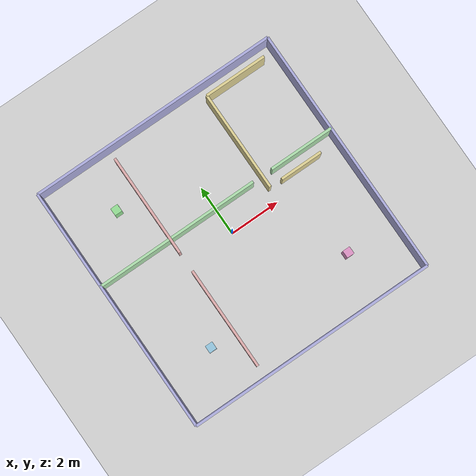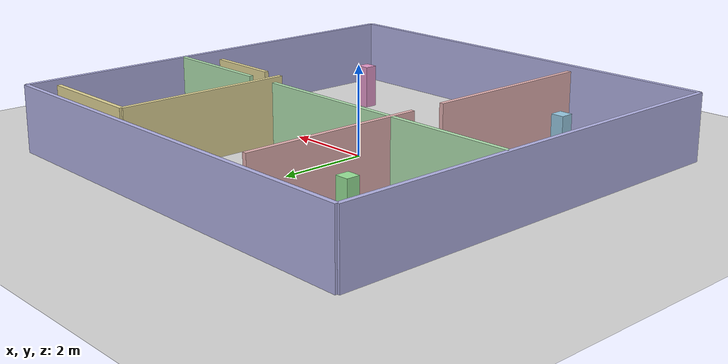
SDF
<?xml version="1.0" ?>
<sdf version="1.8">
  <world name="slamworld_v2">
    <physics name="default_physics" type="tpe">
      <max_step_size>0.001</max_step_size>
      <real_time_update_rate>1000</real_time_update_rate>
      <real_time_factor>1.0</real_time_factor>
    </physics>

    <light name="sun_main" type="directional">
      <cast_shadows>false</cast_shadows>
      <pose>0 0 10 0 0 0</pose>
      <diffuse>1 1 1 1</diffuse>
      <specular>0.2 0.2 0.2 1</specular>
      <direction>-0.5 0.1 -1</direction>
      <attenuation>
        <range>100</range>
        <constant>0.9</constant>
        <linear>0.01</linear>
        <quadratic>0.001</quadratic>
      </attenuation>
    </light>

    <model name="ground_plane_world">
      <static>true</static>
      <pose>0 0 0 0 0 0</pose>
      <link name="ground_plane_link">
        <collision name="ground_plane_col">
          <geometry>
            <plane>
              <normal>0 0 1</normal>
              <size>50 50</size>
            </plane>
          </geometry>
          <surface>
            <friction>
              <ode>
                <mu>1.0</mu>
                <mu2>0.8</mu2>
              </ode>
            </friction>
          </surface>
        </collision>
        <visual name="ground_plane_vis">
          <geometry>
            <plane>
              <normal>0 0 1</normal>
              <size>50 50</size>
            </plane>
          </geometry>
          <material>
            <ambient>0.8 0.8 0.8 1</ambient>
            <diffuse>0.85 0.85 0.85 1</diffuse>
          </material>
        </visual>
      </link>
    </model>

    <model name="lab_env_01">
      <static>true</static>

      <!-- 외곽 경계 -->
      <link name="wall_n">
        <pose>0 5 0.75 0 0 0</pose>
        <collision name="wall_n_col"><geometry><box><size>10 0.1 1.5</size></box></geometry></collision>
        <visual    name="wall_n_vis"><geometry><box><size>10 0.1 1.5</size></box></geometry>
          <material><diffuse>0.7 0.7 0.9 1</diffuse></material></visual>
      </link>
      <link name="wall_s">
        <pose>0 -5 0.75 0 0 0</pose>
        <collision name="wall_s_col"><geometry><box><size>10 0.1 1.5</size></box></geometry></collision>
        <visual    name="wall_s_vis"><geometry><box><size>10 0.1 1.5</size></box></geometry>
          <material><diffuse>0.7 0.7 0.9 1</diffuse></material></visual>
      </link>
      <link name="wall_e">
        <pose>5 0 0.75 0 0 0</pose>
        <collision name="wall_e_col"><geometry><box><size>0.1 10 1.5</size></box></geometry></collision>
        <visual    name="wall_e_vis"><geometry><box><size>0.1 10 1.5</size></box></geometry>
          <material><diffuse>0.7 0.7 0.9 1</diffuse></material></visual>
      </link>
      <link name="wall_w">
        <pose>-5 0 0.75 0 0 0</pose>
        <collision name="wall_w_col"><geometry><box><size>0.1 10 1.5</size></box></geometry></collision>
        <visual    name="wall_w_vis"><geometry><box><size>0.1 10 1.5</size></box></geometry>
          <material><diffuse>0.7 0.7 0.9 1</diffuse></material></visual>
      </link>

      <!-- 내부 세로 벽 -->
      <link name="wall_v_top">
        <pose>-2 2.45 0.75 0 0 0</pose>
        <collision name="wall_v_top_col"><geometry><box><size>0.1 4.1 1.5</size></box></geometry></collision>
        <visual    name="wall_v_top_vis"><geometry><box><size>0.1 4.1 1.5</size></box></geometry>
          <material><diffuse>0.9 0.7 0.7 1</diffuse></material></visual>
      </link>
      <link name="wall_v_bot">
        <pose>-2 -2.45 0.75 0 0 0</pose>
        <collision name="wall_v_bot_col"><geometry><box><size>0.1 4.1 1.5</size></box></geometry></collision>
        <visual    name="wall_v_bot_vis"><geometry><box><size>0.1 4.1 1.5</size></box></geometry>
          <material><diffuse>0.9 0.7 0.7 1</diffuse></material></visual>
      </link>

      <!-- 내부 가로 벽(원점 피해 y=1.0 유지) -->
      <link name="wall_h_left">
        <pose>-1.7 1.0 0.75 0 0 0</pose>
        <collision name="wall_h_left_col"><geometry><box><size>6.6 0.1 1.5</size></box></geometry></collision>
        <visual    name="wall_h_left_vis"><geometry><box><size>6.6 0.1 1.5</size></box></geometry>
          <material><diffuse>0.7 0.9 0.7 1</diffuse></material></visual>
      </link>
      <link name="wall_h_right">
        <pose>3.7 1.0 0.75 0 0 0</pose>
        <collision name="wall_h_right_col"><geometry><box><size>2.6 0.1 1.5</size></box></geometry></collision>
        <visual    name="wall_h_right_vis"><geometry><box><size>2.6 0.1 1.5</size></box></geometry>
          <material><diffuse>0.7 0.9 0.7 1</diffuse></material></visual>
      </link>

      <!-- 북동쪽 작은 방 -->
      <link name="room_ne_v">
        <pose>2 2.5 0.75 0 0 0</pose>
        <collision name="room_ne_v_col"><geometry><box><size>0.1 4.0 1.5</size></box></geometry></collision>
        <visual    name="room_ne_v_vis"><geometry><box><size>0.1 4.0 1.5</size></box></geometry>
          <material><diffuse>0.9 0.85 0.6 1</diffuse></material></visual>
      </link>
      <link name="room_ne_top">
        <pose>3.25 4.5 0.75 0 0 0</pose>
        <collision name="room_ne_top_col"><geometry><box><size>2.5 0.1 1.5</size></box></geometry></collision>
        <visual    name="room_ne_top_vis"><geometry><box><size>2.5 0.1 1.5</size></box></geometry>
          <material><diffuse>0.9 0.85 0.6 1</diffuse></material></visual>
      </link>
      <link name="room_ne_bottom">
        <pose>3.35 0.5 0.75 0 0 0</pose>
        <collision name="room_ne_bottom_col"><geometry><box><size>1.7 0.1 1.5</size></box></geometry></collision>
        <visual    name="room_ne_bottom_vis"><geometry><box><size>1.7 0.1 1.5</size></box></geometry>
          <material><diffuse>0.9 0.85 0.6 1</diffuse></material></visual>
      </link>

      <!-- 기둥들 -->
      <link name="pillar_1">
        <pose>-3 -3 0.5 0 0 0</pose>
        <collision name="pillar_1_col"><geometry><box><size>0.3 0.3 1.0</size></box></geometry></collision>
        <visual    name="pillar_1_vis"><geometry><box><size>0.3 0.3 1.0</size></box></geometry>
          <material><diffuse>0.6 0.8 0.9 1</diffuse></material></visual>
      </link>
      <link name="pillar_2">
        <pose>3 -3 0.5 0 0 0</pose>
        <collision name="pillar_2_col"><geometry><box><size>0.3 0.3 1.0</size></box></geometry></collision>
        <visual    name="pillar_2_vis"><geometry><box><size>0.3 0.3 1.0</size></box></geometry>
          <material><diffuse>0.9 0.6 0.8 1</diffuse></material></visual>
      </link>
      <link name="pillar_3">
        <pose>-3 3 0.5 0 0 0</pose>
        <collision name="pillar_3_col"><geometry><box><size>0.3 0.3 1.0</size></box></geometry></collision>
        <visual    name="pillar_3_vis"><geometry><box><size>0.3 0.3 1.0</size></box></geometry>
          <material><diffuse>0.6 0.9 0.6 1</diffuse></material></visual>
      </link>
    </model>

    <!-- GUI 카메라 -->
    <gui fullscreen="0">
      <camera name="user_camera">
        <pose>0 -12 6 0.5 0.3 0</pose>
      </camera>
    </gui>
  </world>
</sdf>
